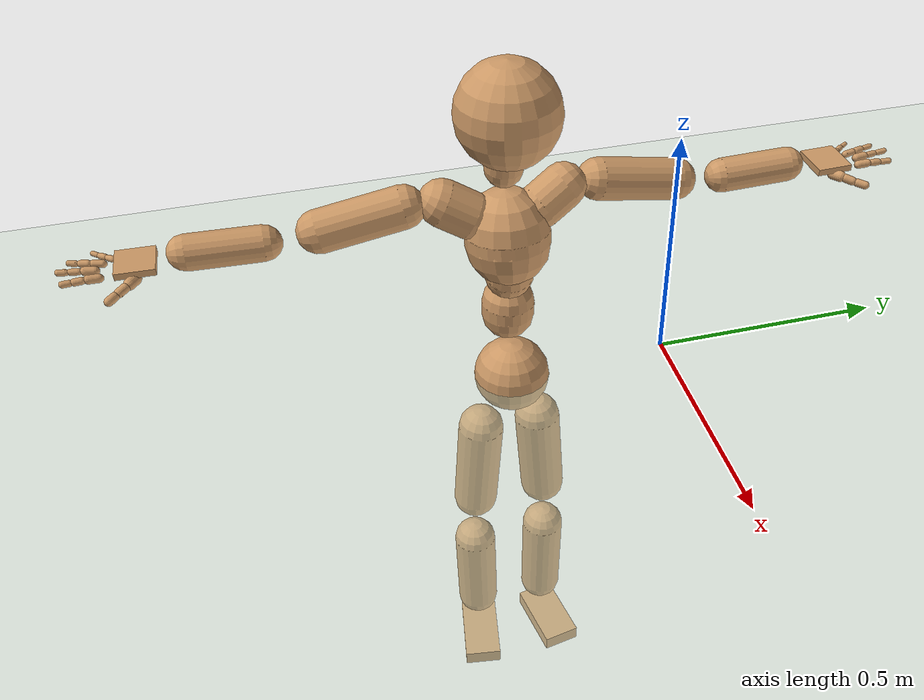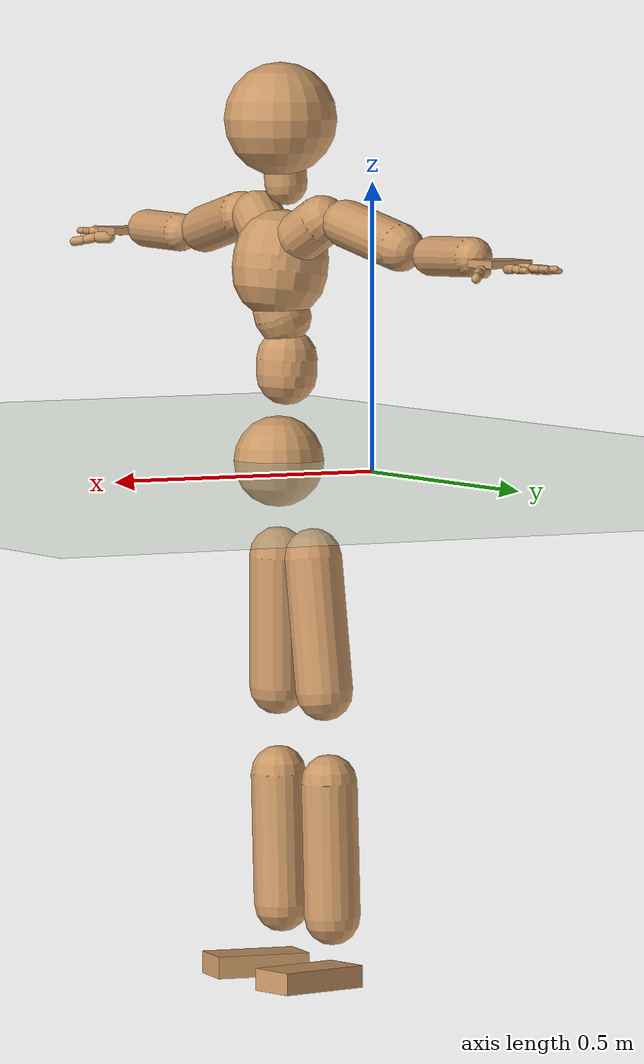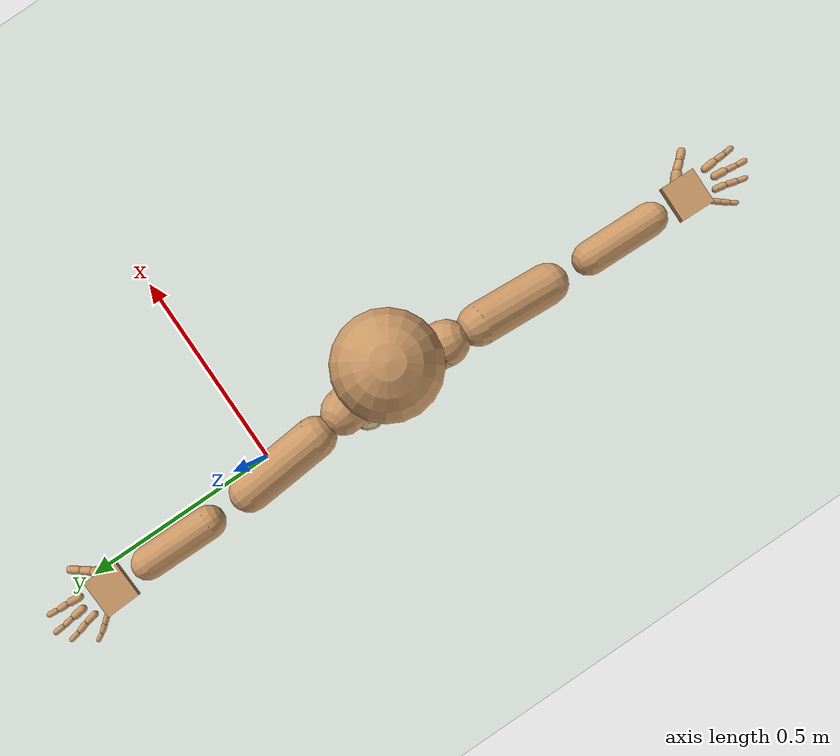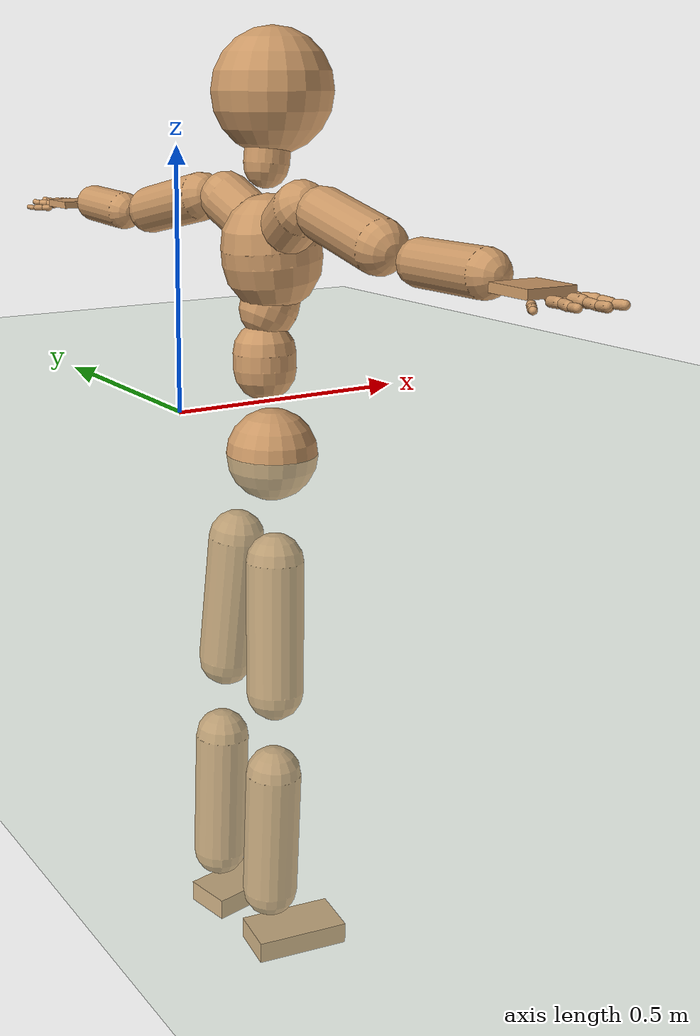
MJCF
<mujoco model="humanoid">
  <compiler coordinate="local" angle="radian"/>
  <default>
    <joint damping="0.0" armature="0.01" stiffness="0.0" limited="true"/>
    <geom conaffinity="1" condim="3" contype="7" margin="0.001" rgba="0.8 0.6 .4 1"/>
  </default>
  <asset>
    <texture type="skybox" builtin="gradient" rgb1=".4 .5 .6" rgb2="0 0 0" width="100" height="100"/>
    <texture builtin="flat" height="1278" mark="cross" markrgb="1 1 1" name="texgeom" random="0.01" rgb1="0.8 0.6 0.4" rgb2="0.8 0.6 0.4" type="cube" width="127"/>
    <texture builtin="checker" height="100" name="texplane" rgb1="0 0 0" rgb2="0.8 0.8 0.8" type="2d" width="100"/>
    <material name="MatPlane" reflectance="0.5" shininess="1" specular="1" texrepeat="60 60" texture="texplane"/>
    <material name="geom" texture="texgeom" texuniform="true"/>
  </asset>
  <worldbody>
    <light cutoff="100" diffuse="1 1 1" dir="-0 0 -1.3" directional="true" exponent="1" pos="0 0 1.3" specular=".1 .1 .1"/>
    <geom conaffinity="1" condim="3" name="floor" pos="0 0 0" rgba="0.8 0.9 0.8 1" size="100 100 .2" type="plane" material="MatPlane"/>
    <body name="Pelvis" pos="0.0004 -0.3378 -0.0043">
      <freejoint name="Pelvis"/>
      <geom type="sphere" contype="1" conaffinity="1" density="500" size="0.0804" pos="0.0000 0.0000 0.0000" name="Pelvis"/>
      <body name="L_Hip" pos="-0.0288 0.0597 -0.0864">
        <joint name="L_Hip_x" type="hinge" pos="0 0 0" axis="1 0 0" stiffness="800" damping="80" armature="0.02" range="-180.0000 180.0000"/>
        <joint name="L_Hip_y" type="hinge" pos="0 0 0" axis="0 1 0" stiffness="800" damping="80" armature="0.02" range="-180.0000 180.0000"/>
        <joint name="L_Hip_z" type="hinge" pos="0 0 0" axis="0 0 1" stiffness="800" damping="80" armature="0.02" range="-180.0000 180.0000"/>
        <geom type="capsule" contype="1" conaffinity="1" density="500" fromto="-0.0043 0.0056 -0.0795 -0.0174 0.0225 -0.3181" size="0.0506" name="L_Hip"/>
        <body name="L_Knee" pos="-0.0217 0.0281 -0.3977">
          <joint name="L_Knee_x" type="hinge" pos="0 0 0" axis="1 0 0" stiffness="800" damping="80" armature="0.02" range="-180.0000 180.0000"/>
          <joint name="L_Knee_y" type="hinge" pos="0 0 0" axis="0 1 0" stiffness="800" damping="80" armature="0.02" range="-180.0000 180.0000"/>
          <joint name="L_Knee_z" type="hinge" pos="0 0 0" axis="0 0 1" stiffness="800" damping="80" armature="0.02" range="-180.0000 180.0000"/>
          <geom type="capsule" contype="1" conaffinity="1" density="500" fromto="-0.0029 -0.0011 -0.0800 -0.0114 -0.0045 -0.3201" size="0.0496" name="L_Knee"/>
          <body name="L_Ankle" pos="-0.0143 -0.0056 -0.4001">
            <joint name="L_Ankle_x" type="hinge" pos="0 0 0" axis="1 0 0" stiffness="800" damping="80" armature="0.02" range="-180.0000 180.0000"/>
            <joint name="L_Ankle_y" type="hinge" pos="0 0 0" axis="0 1 0" stiffness="800" damping="80" armature="0.02" range="-180.0000 180.0000"/>
            <joint name="L_Ankle_z" type="hinge" pos="0 0 0" axis="0 0 1" stiffness="800" damping="80" armature="0.02" range="-180.0000 180.0000"/>
            <geom type="box" contype="1" conaffinity="1" density="500" pos="0.0540 0.0097 -0.0237" size="0.0855 0.0446 0.0196" quat="0.9961 0.0000 0.0000 0.0884" name="L_Ankle"/>
            <body name="L_Toe" pos="0.1081 0.0193 -0.0474">
              <joint name="L_Toe_x" type="hinge" pos="0 0 0" axis="1 0 0" stiffness="500" damping="50" armature="0.02" range="-180.0000 180.0000"/>
              <joint name="L_Toe_y" type="hinge" pos="0 0 0" axis="0 1 0" stiffness="500" damping="50" armature="0.02" range="-180.0000 180.0000"/>
              <joint name="L_Toe_z" type="hinge" pos="0 0 0" axis="0 0 1" stiffness="500" damping="50" armature="0.02" range="-180.0000 180.0000"/>
              <geom type="box" contype="1" conaffinity="1" density="500" pos="0.0000 0.0000 0.0239" size="0.0009 0.0022 0.001" quat="0.9954 0.0000 0.0000 0.0955" name="L_Toe"/>
            </body>
          </body>
        </body>
      </body>
      <body name="R_Hip" pos="-0.0303 -0.0593 -0.0937">
        <joint name="R_Hip_x" type="hinge" pos="0 0 0" axis="1 0 0" stiffness="800" damping="80" armature="0.02" range="-180.0000 180.0000"/>
        <joint name="R_Hip_y" type="hinge" pos="0 0 0" axis="0 1 0" stiffness="800" damping="80" armature="0.02" range="-180.0000 180.0000"/>
        <joint name="R_Hip_z" type="hinge" pos="0 0 0" axis="0 0 1" stiffness="800" damping="80" armature="0.02" range="-180.0000 180.0000"/>
        <geom type="capsule" contype="1" conaffinity="1" density="500" fromto="-0.0032 -0.0062 -0.0785 -0.0130 -0.0249 -0.3142" size="0.0505" name="R_Hip"/>
        <body name="R_Knee" pos="-0.0162 -0.0311 -0.3927">
          <joint name="R_Knee_x" type="hinge" pos="0 0 0" axis="1 0 0" stiffness="800" damping="80" armature="0.02" range="-180.0000 180.0000"/>
          <joint name="R_Knee_y" type="hinge" pos="0 0 0" axis="0 1 0" stiffness="800" damping="80" armature="0.02" range="-180.0000 180.0000"/>
          <joint name="R_Knee_z" type="hinge" pos="0 0 0" axis="0 0 1" stiffness="800" damping="80" armature="0.02" range="-180.0000 180.0000"/>
          <geom type="capsule" contype="1" conaffinity="1" density="500" fromto="-0.0020 0.0003 -0.0783 -0.0078 0.0011 -0.3134" size="0.0496" name="R_Knee"/>
          <body name="R_Ankle" pos="-0.0098 0.0014 -0.3917">
            <joint name="R_Ankle_x" type="hinge" pos="0 0 0" axis="1 0 0" stiffness="800" damping="80" armature="0.02" range="-180.0000 180.0000"/>
            <joint name="R_Ankle_y" type="hinge" pos="0 0 0" axis="0 1 0" stiffness="800" damping="80" armature="0.02" range="-180.0000 180.0000"/>
            <joint name="R_Ankle_z" type="hinge" pos="0 0 0" axis="0 0 1" stiffness="800" damping="80" armature="0.02" range="-180.0000 180.0000"/>
            <geom type="box" contype="1" conaffinity="1" density="500" pos="0.0507 -0.0077 -0.0256" size="0.0855 0.0446 0.0196" quat="0.9972 0.0000 0.0000 -0.0753" name="R_Ankle"/>
            <body name="R_Toe" pos="0.1013 -0.0154 -0.0512">
              <joint name="R_Toe_x" type="hinge" pos="0 0 0" axis="1 0 0" stiffness="500" damping="50" armature="0.02" range="-180.0000 180.0000"/>
              <joint name="R_Toe_y" type="hinge" pos="0 0 0" axis="0 1 0" stiffness="500" damping="50" armature="0.02" range="-180.0000 180.0000"/>
              <joint name="R_Toe_z" type="hinge" pos="0 0 0" axis="0 0 1" stiffness="500" damping="50" armature="0.02" range="-180.0000 180.0000"/>
              <geom type="box" contype="1" conaffinity="1" density="500" pos="0.0000 0.0000 0.0258" size="0.0009 0.0022 0.001" quat="0.9979 0.0000 0.0000 -0.0644" name="R_Toe"/>
            </body>
          </body>
        </body>
      </body>
      <body name="Torso" pos="-0.0161 -0.0042 0.0979">
        <joint name="Torso_x" type="hinge" pos="0 0 0" axis="1 0 0" stiffness="1000" damping="100" armature="0.02" range="-180.0000 180.0000"/>
        <joint name="Torso_y" type="hinge" pos="0 0 0" axis="0 1 0" stiffness="1000" damping="100" armature="0.02" range="-180.0000 180.0000"/>
        <joint name="Torso_z" type="hinge" pos="0 0 0" axis="0 0 1" stiffness="1000" damping="100" armature="0.02" range="-180.0000 180.0000"/>
        <geom type="capsule" contype="1" conaffinity="1" density="500" fromto="-0.0009 0.0030 0.0822 -0.0006 0.0020 0.0548" size="0.0541" name="Torso"/>
        <body name="Spine" pos="-0.0016 0.0051 0.137">
          <joint name="Spine_x" type="hinge" pos="0 0 0" axis="1 0 0" stiffness="1000" damping="100" armature="0.02" range="-180.0000 180.0000"/>
          <joint name="Spine_y" type="hinge" pos="0 0 0" axis="0 1 0" stiffness="1000" damping="100" armature="0.02" range="-180.0000 180.0000"/>
          <joint name="Spine_z" type="hinge" pos="0 0 0" axis="0 0 1" stiffness="1000" damping="100" armature="0.02" range="-180.0000 180.0000"/>
          <geom type="capsule" contype="1" conaffinity="1" density="500" fromto="0.0131 -0.0013 0.0285 0.0087 -0.0009 0.0190" size="0.0499" name="Spine"/>
          <body name="Chest" pos="0.0218 -0.0021 0.0474">
            <joint name="Chest_x" type="hinge" pos="0 0 0" axis="1 0 0" stiffness="1000" damping="100" armature="0.02" range="-180.0000 180.0000"/>
            <joint name="Chest_y" type="hinge" pos="0 0 0" axis="0 1 0" stiffness="1000" damping="100" armature="0.02" range="-180.0000 180.0000"/>
            <joint name="Chest_z" type="hinge" pos="0 0 0" axis="0 0 1" stiffness="1000" damping="100" armature="0.02" range="-180.0000 180.0000"/>
            <geom type="capsule" contype="1" conaffinity="1" density="500" fromto="-0.0100 -0.0013 0.0774 -0.0067 -0.0009 0.0516" size="0.0847" name="Chest"/>
            <body name="Neck" pos="-0.0248 -0.005 0.1777">
              <joint name="Neck_x" type="hinge" pos="0 0 0" axis="1 0 0" stiffness="500" damping="50" armature="0.02" range="-180.0000 180.0000"/>
              <joint name="Neck_y" type="hinge" pos="0 0 0" axis="0 1 0" stiffness="500" damping="50" armature="0.02" range="-180.0000 180.0000"/>
              <joint name="Neck_z" type="hinge" pos="0 0 0" axis="0 0 1" stiffness="500" damping="50" armature="0.02" range="-180.0000 180.0000"/>
              <geom type="capsule" contype="1" conaffinity="1" density="500" fromto="0.0037 0.0017 0.0285 0.0147 0.0067 0.1140" size="0.0379" name="Neck"/>
              <body name="Head" pos="0.0184 0.0084 0.1425">
                <joint name="Head_x" type="hinge" pos="0 0 0" axis="1 0 0" stiffness="500" damping="50" armature="0.02" range="-180.0000 180.0000"/>
                <joint name="Head_y" type="hinge" pos="0 0 0" axis="0 1 0" stiffness="500" damping="50" armature="0.02" range="-180.0000 180.0000"/>
                <joint name="Head_z" type="hinge" pos="0 0 0" axis="0 0 1" stiffness="500" damping="50" armature="0.02" range="-180.0000 180.0000"/>
                <geom type="sphere" contype="1" conaffinity="1" density="500" size="0.1004" pos="0.0000 0.0000 0.0000" name="Head"/>
              </body>
            </body>
            <body name="L_Thorax" pos="-0.0101 0.0477 0.1065">
              <joint name="L_Thorax_x" type="hinge" pos="0 0 0" axis="1 0 0" stiffness="500" damping="50" armature="0.02" range="-180.0000 180.0000"/>
              <joint name="L_Thorax_y" type="hinge" pos="0 0 0" axis="0 1 0" stiffness="500" damping="50" armature="0.02" range="-180.0000 180.0000"/>
              <joint name="L_Thorax_z" type="hinge" pos="0 0 0" axis="0 0 1" stiffness="500" damping="50" armature="0.02" range="-180.0000 180.0000"/>
              <geom type="capsule" contype="1" conaffinity="1" density="500" fromto="-0.0044 0.0167 0.0097 -0.0175 0.0668 0.0387" size="0.0454" name="L_Thorax"/>
              <body name="L_Shoulder" pos="-0.0218 0.0834 0.0484">
                <joint name="L_Shoulder_x" type="hinge" pos="0 0 0" axis="1 0 0" stiffness="500" damping="50" armature="0.02" range="-180.0000 180.0000"/>
                <joint name="L_Shoulder_y" type="hinge" pos="0 0 0" axis="0 1 0" stiffness="500" damping="50" armature="0.02" range="-180.0000 180.0000"/>
                <joint name="L_Shoulder_z" type="hinge" pos="0 0 0" axis="0 0 1" stiffness="500" damping="50" armature="0.02" range="-180.0000 180.0000"/>
                <geom type="capsule" contype="1" conaffinity="1" density="500" fromto="-0.0048 0.0556 -0.0116 -0.0192 0.2222 -0.0466" size="0.0418" name="L_Shoulder"/>
                <body name="L_Elbow" pos="-0.024 0.2778 -0.0582">
                  <joint name="L_Elbow_x" type="hinge" pos="0 0 0" axis="1 0 0" stiffness="500" damping="50" armature="0.02" range="-720.0000 720.0000"/>
                  <joint name="L_Elbow_y" type="hinge" pos="0 0 0" axis="0 1 0" stiffness="500" damping="50" armature="0.02" range="-720.0000 720.0000"/>
                  <joint name="L_Elbow_z" type="hinge" pos="0 0 0" axis="0 0 1" stiffness="500" damping="50" armature="0.02" range="-720.0000 720.0000"/>
                  <geom type="capsule" contype="1" conaffinity="1" density="500" fromto="0.0003 0.0469 0.0014 0.0014 0.1875 0.0058" size="0.0342" name="L_Elbow"/>
                  <body name="L_Wrist" pos="0.0017 0.2344 0.0072">
                    <joint name="L_Wrist_x" type="hinge" pos="0 0 0" axis="1 0 0" stiffness="300" damping="30" armature="0.02" range="-180.0000 180.0000"/>
                    <joint name="L_Wrist_y" type="hinge" pos="0 0 0" axis="0 1 0" stiffness="300" damping="30" armature="0.02" range="-180.0000 180.0000"/>
                    <joint name="L_Wrist_z" type="hinge" pos="0 0 0" axis="0 0 1" stiffness="300" damping="30" armature="0.02" range="-180.0000 180.0000"/>
                    <geom type="box" contype="1" conaffinity="1" density="500" pos="-0.0018 0.0434 -0.0084" size="0.037 0.0411 0.0066" quat="0.7218 0.0000 0.0000 -0.6921" name="L_Wrist"/>
                    <body name="L_Index1" pos="0.02 0.1018 -0.0152">
                      <joint name="L_Index1_x" type="hinge" pos="0 0 0" axis="1 0 0" stiffness="100" damping="10" armature="0.02" range="-180.0000 180.0000"/>
                      <joint name="L_Index1_y" type="hinge" pos="0 0 0" axis="0 1 0" stiffness="100" damping="10" armature="0.02" range="-180.0000 180.0000"/>
                      <joint name="L_Index1_z" type="hinge" pos="0 0 0" axis="0 0 1" stiffness="100" damping="10" armature="0.02" range="-180.0000 180.0000"/>
                      <geom type="capsule" contype="1" conaffinity="1" density="500" fromto="0.0006 0.0062 0.0005 0.0022 0.0249 0.0020" size="0.0083" name="L_Index1"/>
                      <body name="L_Index2" pos="0.0028 0.0312 0.0024">
                        <joint name="L_Index2_x" type="hinge" pos="0 0 0" axis="1 0 0" stiffness="100" damping="10" armature="0.02" range="-180.0000 180.0000"/>
                        <joint name="L_Index2_y" type="hinge" pos="0 0 0" axis="0 1 0" stiffness="100" damping="10" armature="0.02" range="-180.0000 180.0000"/>
                        <joint name="L_Index2_z" type="hinge" pos="0 0 0" axis="0 0 1" stiffness="100" damping="10" armature="0.02" range="-180.0000 180.0000"/>
                        <geom type="capsule" contype="1" conaffinity="1" density="500" fromto="0.0001 0.0044 -0.0003 0.0004 0.0177 -0.0011" size="0.007" name="L_Index2"/>
                        <body name="L_Index3" pos="0.0005 0.0221 -0.0014">
                          <joint name="L_Index3_x" type="hinge" pos="0 0 0" axis="1 0 0" stiffness="100" damping="10" armature="0.02" range="-180.0000 180.0000"/>
                          <joint name="L_Index3_y" type="hinge" pos="0 0 0" axis="0 1 0" stiffness="100" damping="10" armature="0.02" range="-180.0000 180.0000"/>
                          <joint name="L_Index3_z" type="hinge" pos="0 0 0" axis="0 0 1" stiffness="100" damping="10" armature="0.02" range="-180.0000 180.0000"/>
                          <geom type="capsule" contype="1" conaffinity="1" density="500" fromto="0.0005 0.0048 0.0001 0.0020 0.0193 0.0005" size="0.006" name="L_Index3"/>
                        </body>
                      </body>
                    </body>
                    <body name="L_Middle1" pos="-0.0015 0.1088 -0.0131">
                      <joint name="L_Middle1_x" type="hinge" pos="0 0 0" axis="1 0 0" stiffness="100" damping="10" armature="0.02" range="-180.0000 180.0000"/>
                      <joint name="L_Middle1_y" type="hinge" pos="0 0 0" axis="0 1 0" stiffness="100" damping="10" armature="0.02" range="-180.0000 180.0000"/>
                      <joint name="L_Middle1_z" type="hinge" pos="0 0 0" axis="0 0 1" stiffness="100" damping="10" armature="0.02" range="-180.0000 180.0000"/>
                      <geom type="capsule" contype="1" conaffinity="1" density="500" fromto="-0.0008 0.0060 0.0002 -0.0030 0.0238 0.0009" size="0.0085" name="L_Middle1"/>
                      <body name="L_Middle2" pos="-0.0038 0.0298 0.0011">
                        <joint name="L_Middle2_x" type="hinge" pos="0 0 0" axis="1 0 0" stiffness="100" damping="10" armature="0.02" range="-180.0000 180.0000"/>
                        <joint name="L_Middle2_y" type="hinge" pos="0 0 0" axis="0 1 0" stiffness="100" damping="10" armature="0.02" range="-180.0000 180.0000"/>
                        <joint name="L_Middle2_z" type="hinge" pos="0 0 0" axis="0 0 1" stiffness="100" damping="10" armature="0.02" range="-180.0000 180.0000"/>
                        <geom type="capsule" contype="1" conaffinity="1" density="500" fromto="-0.0007 0.0046 -0.0001 -0.0030 0.0186 -0.0004" size="0.0064" name="L_Middle2"/>
                        <body name="L_Middle3" pos="-0.0037 0.0232 -0.0005">
                          <joint name="L_Middle3_x" type="hinge" pos="0 0 0" axis="1 0 0" stiffness="100" damping="10" armature="0.02" range="-180.0000 180.0000"/>
                          <joint name="L_Middle3_y" type="hinge" pos="0 0 0" axis="0 1 0" stiffness="100" damping="10" armature="0.02" range="-180.0000 180.0000"/>
                          <joint name="L_Middle3_z" type="hinge" pos="0 0 0" axis="0 0 1" stiffness="100" damping="10" armature="0.02" range="-180.0000 180.0000"/>
                          <geom type="capsule" contype="1" conaffinity="1" density="500" fromto="-0.0003 0.0050 0.0003 -0.0014 0.0202 0.0012" size="0.0059" name="L_Middle3"/>
                        </body>
                      </body>
                    </body>
                    <body name="L_Pinky1" pos="-0.0389 0.0834 -0.0194">
                      <joint name="L_Pinky1_x" type="hinge" pos="0 0 0" axis="1 0 0" stiffness="100" damping="10" armature="0.02" range="-180.0000 180.0000"/>
                      <joint name="L_Pinky1_y" type="hinge" pos="0 0 0" axis="0 1 0" stiffness="100" damping="10" armature="0.02" range="-180.0000 180.0000"/>
                      <joint name="L_Pinky1_z" type="hinge" pos="0 0 0" axis="0 0 1" stiffness="100" damping="10" armature="0.02" range="-180.0000 180.0000"/>
                      <geom type="capsule" contype="1" conaffinity="1" density="500" fromto="-0.0024 0.0028 -0.0001 -0.0095 0.0113 -0.0002" size="0.0061" name="L_Pinky1"/>
                      <body name="L_Pinky2" pos="-0.0119 0.0141 -0.0003">
                        <joint name="L_Pinky2_x" type="hinge" pos="0 0 0" axis="1 0 0" stiffness="100" damping="10" armature="0.02" range="-180.0000 180.0000"/>
                        <joint name="L_Pinky2_y" type="hinge" pos="0 0 0" axis="0 1 0" stiffness="100" damping="10" armature="0.02" range="-180.0000 180.0000"/>
                        <joint name="L_Pinky2_z" type="hinge" pos="0 0 0" axis="0 0 1" stiffness="100" damping="10" armature="0.02" range="-180.0000 180.0000"/>
                        <geom type="capsule" contype="1" conaffinity="1" density="500" fromto="-0.0023 0.0029 -0.0001 -0.0093 0.0116 -0.0005" size="0.006" name="L_Pinky2"/>
                        <body name="L_Pinky3" pos="-0.0116 0.0145 -0.0007">
                          <joint name="L_Pinky3_x" type="hinge" pos="0 0 0" axis="1 0 0" stiffness="100" damping="10" armature="0.02" range="-180.0000 180.0000"/>
                          <joint name="L_Pinky3_y" type="hinge" pos="0 0 0" axis="0 1 0" stiffness="100" damping="10" armature="0.02" range="-180.0000 180.0000"/>
                          <joint name="L_Pinky3_z" type="hinge" pos="0 0 0" axis="0 0 1" stiffness="100" damping="10" armature="0.02" range="-180.0000 180.0000"/>
                          <geom type="capsule" contype="1" conaffinity="1" density="500" fromto="-0.0019 0.0033 0.0003 -0.0077 0.0132 0.0011" size="0.0047" name="L_Pinky3"/>
                        </body>
                      </body>
                    </body>
                    <body name="L_Ring1" pos="-0.0233 0.0966 -0.0151">
                      <joint name="L_Ring1_x" type="hinge" pos="0 0 0" axis="1 0 0" stiffness="100" damping="10" armature="0.02" range="-180.0000 180.0000"/>
                      <joint name="L_Ring1_y" type="hinge" pos="0 0 0" axis="0 1 0" stiffness="100" damping="10" armature="0.02" range="-180.0000 180.0000"/>
                      <joint name="L_Ring1_z" type="hinge" pos="0 0 0" axis="0 0 1" stiffness="100" damping="10" armature="0.02" range="-180.0000 180.0000"/>
                      <geom type="capsule" contype="1" conaffinity="1" density="500" fromto="-0.0010 0.0054 0.0003 -0.0042 0.0215 0.0012" size="0.0073" name="L_Ring1"/>
                      <body name="L_Ring2" pos="-0.0052 0.0269 0.0015">
                        <joint name="L_Ring2_x" type="hinge" pos="0 0 0" axis="1 0 0" stiffness="100" damping="10" armature="0.02" range="-180.0000 180.0000"/>
                        <joint name="L_Ring2_y" type="hinge" pos="0 0 0" axis="0 1 0" stiffness="100" damping="10" armature="0.02" range="-180.0000 180.0000"/>
                        <joint name="L_Ring2_z" type="hinge" pos="0 0 0" axis="0 0 1" stiffness="100" damping="10" armature="0.02" range="-180.0000 180.0000"/>
                        <geom type="capsule" contype="1" conaffinity="1" density="500" fromto="-0.0014 0.0044 -0.0002 -0.0056 0.0177 -0.0006" size="0.0069" name="L_Ring2"/>
                        <body name="L_Ring3" pos="-0.007 0.0221 -0.0008">
                          <joint name="L_Ring3_x" type="hinge" pos="0 0 0" axis="1 0 0" stiffness="100" damping="10" armature="0.02" range="-180.0000 180.0000"/>
                          <joint name="L_Ring3_y" type="hinge" pos="0 0 0" axis="0 1 0" stiffness="100" damping="10" armature="0.02" range="-180.0000 180.0000"/>
                          <joint name="L_Ring3_z" type="hinge" pos="0 0 0" axis="0 0 1" stiffness="100" damping="10" armature="0.02" range="-180.0000 180.0000"/>
                          <geom type="capsule" contype="1" conaffinity="1" density="500" fromto="-0.0010 0.0048 0.0002 -0.0040 0.0193 0.0010" size="0.0055" name="L_Ring3"/>
                        </body>
                      </body>
                    </body>
                    <body name="L_Thumb1" pos="0.0255 0.0433 -0.0212">
                      <joint name="L_Thumb1_x" type="hinge" pos="0 0 0" axis="1 0 0" stiffness="100" damping="10" armature="0.02" range="-180.0000 180.0000"/>
                      <joint name="L_Thumb1_y" type="hinge" pos="0 0 0" axis="0 1 0" stiffness="100" damping="10" armature="0.02" range="-180.0000 180.0000"/>
                      <joint name="L_Thumb1_z" type="hinge" pos="0 0 0" axis="0 0 1" stiffness="100" damping="10" armature="0.02" range="-180.0000 180.0000"/>
                      <geom type="capsule" contype="1" conaffinity="1" density="500" fromto="0.0046 0.0034 0.0000 0.0185 0.0137 0.0001" size="0.0111" name="L_Thumb1"/>
                      <body name="L_Thumb2" pos="0.0232 0.0171 0.0002">
                        <joint name="L_Thumb2_x" type="hinge" pos="0 0 0" axis="1 0 0" stiffness="100" damping="10" armature="0.02" range="-180.0000 180.0000"/>
                        <joint name="L_Thumb2_y" type="hinge" pos="0 0 0" axis="0 1 0" stiffness="100" damping="10" armature="0.02" range="-180.0000 180.0000"/>
                        <joint name="L_Thumb2_z" type="hinge" pos="0 0 0" axis="0 0 1" stiffness="100" damping="10" armature="0.02" range="-180.0000 180.0000"/>
                        <geom type="capsule" contype="1" conaffinity="1" density="500" fromto="0.0029 0.0040 -0.0011 0.0114 0.0160 -0.0046" size="0.0087" name="L_Thumb2"/>
                        <body name="L_Thumb3" pos="0.0143 0.02 -0.0057">
                          <joint name="L_Thumb3_x" type="hinge" pos="0 0 0" axis="1 0 0" stiffness="100" damping="10" armature="0.02" range="-180.0000 180.0000"/>
                          <joint name="L_Thumb3_y" type="hinge" pos="0 0 0" axis="0 1 0" stiffness="100" damping="10" armature="0.02" range="-180.0000 180.0000"/>
                          <joint name="L_Thumb3_z" type="hinge" pos="0 0 0" axis="0 0 1" stiffness="100" damping="10" armature="0.02" range="-180.0000 180.0000"/>
                          <geom type="capsule" contype="1" conaffinity="1" density="500" fromto="0.0033 0.0044 -0.0007 0.0130 0.0176 -0.0030" size="0.0082" name="L_Thumb3"/>
                        </body>
                      </body>
                    </body>
                  </body>
                </body>
              </body>
            </body>
            <body name="R_Thorax" pos="-0.0152 -0.0494 0.1029">
              <joint name="R_Thorax_x" type="hinge" pos="0 0 0" axis="1 0 0" stiffness="500" damping="50" armature="0.02" range="-180.0000 180.0000"/>
              <joint name="R_Thorax_y" type="hinge" pos="0 0 0" axis="0 1 0" stiffness="500" damping="50" armature="0.02" range="-180.0000 180.0000"/>
              <joint name="R_Thorax_z" type="hinge" pos="0 0 0" axis="0 0 1" stiffness="500" damping="50" armature="0.02" range="-180.0000 180.0000"/>
              <geom type="capsule" contype="1" conaffinity="1" density="500" fromto="-0.0034 -0.0180 0.0104 -0.0136 -0.0718 0.0417" size="0.0463" name="R_Thorax"/>
              <body name="R_Shoulder" pos="-0.0169 -0.0898 0.0521">
                <joint name="R_Shoulder_x" type="hinge" pos="0 0 0" axis="1 0 0" stiffness="500" damping="50" armature="0.02" range="-180.0000 180.0000"/>
                <joint name="R_Shoulder_y" type="hinge" pos="0 0 0" axis="0 1 0" stiffness="500" damping="50" armature="0.02" range="-180.0000 180.0000"/>
                <joint name="R_Shoulder_z" type="hinge" pos="0 0 0" axis="0 0 1" stiffness="500" damping="50" armature="0.02" range="-180.0000 180.0000"/>
                <geom type="capsule" contype="1" conaffinity="1" density="500" fromto="-0.0033 -0.0536 -0.0109 -0.0133 -0.2143 -0.0436" size="0.0421" name="R_Shoulder"/>
                <body name="R_Elbow" pos="-0.0167 -0.2679 -0.0544">
                  <joint name="R_Elbow_x" type="hinge" pos="0 0 0" axis="1 0 0" stiffness="500" damping="50" armature="0.02" range="-720.0000 720.0000"/>
                  <joint name="R_Elbow_y" type="hinge" pos="0 0 0" axis="0 1 0" stiffness="500" damping="50" armature="0.02" range="-720.0000 720.0000"/>
                  <joint name="R_Elbow_z" type="hinge" pos="0 0 0" axis="0 0 1" stiffness="500" damping="50" armature="0.02" range="-720.0000 720.0000"/>
                  <geom type="capsule" contype="1" conaffinity="1" density="500" fromto="-0.0013 -0.0471 0.0005 -0.0052 -0.1885 0.0022" size="0.0344" name="R_Elbow"/>
                  <body name="R_Wrist" pos="-0.0065 -0.2357 0.0027">
                    <joint name="R_Wrist_x" type="hinge" pos="0 0 0" axis="1 0 0" stiffness="300" damping="30" armature="0.02" range="-180.0000 180.0000"/>
                    <joint name="R_Wrist_y" type="hinge" pos="0 0 0" axis="0 1 0" stiffness="300" damping="30" armature="0.02" range="-180.0000 180.0000"/>
                    <joint name="R_Wrist_z" type="hinge" pos="0 0 0" axis="0 0 1" stiffness="300" damping="30" armature="0.02" range="-180.0000 180.0000"/>
                    <geom type="box" contype="1" conaffinity="1" density="500" pos="-0.0012 -0.0428 -0.0081" size="0.037 0.0387 0.0067" quat="0.7170 0.0000 0.0000 0.6971" name="R_Wrist"/>
                    <body name="R_Index1" pos="0.0212 -0.1006 -0.0146">
                      <joint name="R_Index1_x" type="hinge" pos="0 0 0" axis="1 0 0" stiffness="100" damping="10" armature="0.02" range="-180.0000 180.0000"/>
                      <joint name="R_Index1_y" type="hinge" pos="0 0 0" axis="0 1 0" stiffness="100" damping="10" armature="0.02" range="-180.0000 180.0000"/>
                      <joint name="R_Index1_z" type="hinge" pos="0 0 0" axis="0 0 1" stiffness="100" damping="10" armature="0.02" range="-180.0000 180.0000"/>
                      <geom type="capsule" contype="1" conaffinity="1" density="500" fromto="0.0006 -0.0062 0.0005 0.0022 -0.0249 0.0020" size="0.0083" name="R_Index1"/>
                      <body name="R_Index2" pos="0.0028 -0.0312 0.0024">
                        <joint name="R_Index2_x" type="hinge" pos="0 0 0" axis="1 0 0" stiffness="100" damping="10" armature="0.02" range="-180.0000 180.0000"/>
                        <joint name="R_Index2_y" type="hinge" pos="0 0 0" axis="0 1 0" stiffness="100" damping="10" armature="0.02" range="-180.0000 180.0000"/>
                        <joint name="R_Index2_z" type="hinge" pos="0 0 0" axis="0 0 1" stiffness="100" damping="10" armature="0.02" range="-180.0000 180.0000"/>
                        <geom type="capsule" contype="1" conaffinity="1" density="500" fromto="0.0001 -0.0044 -0.0003 0.0004 -0.0177 -0.0011" size="0.007" name="R_Index2"/>
                        <body name="R_Index3" pos="0.0005 -0.0221 -0.0014">
                          <joint name="R_Index3_x" type="hinge" pos="0 0 0" axis="1 0 0" stiffness="100" damping="10" armature="0.02" range="-180.0000 180.0000"/>
                          <joint name="R_Index3_y" type="hinge" pos="0 0 0" axis="0 1 0" stiffness="100" damping="10" armature="0.02" range="-180.0000 180.0000"/>
                          <joint name="R_Index3_z" type="hinge" pos="0 0 0" axis="0 0 1" stiffness="100" damping="10" armature="0.02" range="-180.0000 180.0000"/>
                          <geom type="capsule" contype="1" conaffinity="1" density="500" fromto="0.0005 -0.0040 0.0001 0.0020 -0.0161 0.0005" size="0.0063" name="R_Index3"/>
                        </body>
                      </body>
                    </body>
                    <body name="R_Middle1" pos="-0.0003 -0.1076 -0.0125">
                      <joint name="R_Middle1_x" type="hinge" pos="0 0 0" axis="1 0 0" stiffness="100" damping="10" armature="0.02" range="-180.0000 180.0000"/>
                      <joint name="R_Middle1_y" type="hinge" pos="0 0 0" axis="0 1 0" stiffness="100" damping="10" armature="0.02" range="-180.0000 180.0000"/>
                      <joint name="R_Middle1_z" type="hinge" pos="0 0 0" axis="0 0 1" stiffness="100" damping="10" armature="0.02" range="-180.0000 180.0000"/>
                      <geom type="capsule" contype="1" conaffinity="1" density="500" fromto="-0.0008 -0.0060 0.0002 -0.0030 -0.0238 0.0009" size="0.0085" name="R_Middle1"/>
                      <body name="R_Middle2" pos="-0.0038 -0.0298 0.0011">
                        <joint name="R_Middle2_x" type="hinge" pos="0 0 0" axis="1 0 0" stiffness="100" damping="10" armature="0.02" range="-180.0000 180.0000"/>
                        <joint name="R_Middle2_y" type="hinge" pos="0 0 0" axis="0 1 0" stiffness="100" damping="10" armature="0.02" range="-180.0000 180.0000"/>
                        <joint name="R_Middle2_z" type="hinge" pos="0 0 0" axis="0 0 1" stiffness="100" damping="10" armature="0.02" range="-180.0000 180.0000"/>
                        <geom type="capsule" contype="1" conaffinity="1" density="500" fromto="-0.0007 -0.0046 -0.0001 -0.0030 -0.0186 -0.0004" size="0.0064" name="R_Middle2"/>
                        <body name="R_Middle3" pos="-0.0037 -0.0232 -0.0005">
                          <joint name="R_Middle3_x" type="hinge" pos="0 0 0" axis="1 0 0" stiffness="100" damping="10" armature="0.02" range="-180.0000 180.0000"/>
                          <joint name="R_Middle3_y" type="hinge" pos="0 0 0" axis="0 1 0" stiffness="100" damping="10" armature="0.02" range="-180.0000 180.0000"/>
                          <joint name="R_Middle3_z" type="hinge" pos="0 0 0" axis="0 0 1" stiffness="100" damping="10" armature="0.02" range="-180.0000 180.0000"/>
                          <geom type="capsule" contype="1" conaffinity="1" density="500" fromto="-0.0003 -0.0042 0.0003 -0.0014 -0.0170 0.0012" size="0.0061" name="R_Middle3"/>
                        </body>
                      </body>
                    </body>
                    <body name="R_Pinky1" pos="-0.0377 -0.0822 -0.0188">
                      <joint name="R_Pinky1_x" type="hinge" pos="0 0 0" axis="1 0 0" stiffness="100" damping="10" armature="0.02" range="-180.0000 180.0000"/>
                      <joint name="R_Pinky1_y" type="hinge" pos="0 0 0" axis="0 1 0" stiffness="100" damping="10" armature="0.02" range="-180.0000 180.0000"/>
                      <joint name="R_Pinky1_z" type="hinge" pos="0 0 0" axis="0 0 1" stiffness="100" damping="10" armature="0.02" range="-180.0000 180.0000"/>
                      <geom type="capsule" contype="1" conaffinity="1" density="500" fromto="-0.0024 -0.0028 -0.0001 -0.0095 -0.0113 -0.0002" size="0.0061" name="R_Pinky1"/>
                      <body name="R_Pinky2" pos="-0.0119 -0.0141 -0.0003">
                        <joint name="R_Pinky2_x" type="hinge" pos="0 0 0" axis="1 0 0" stiffness="100" damping="10" armature="0.02" range="-180.0000 180.0000"/>
                        <joint name="R_Pinky2_y" type="hinge" pos="0 0 0" axis="0 1 0" stiffness="100" damping="10" armature="0.02" range="-180.0000 180.0000"/>
                        <joint name="R_Pinky2_z" type="hinge" pos="0 0 0" axis="0 0 1" stiffness="100" damping="10" armature="0.02" range="-180.0000 180.0000"/>
                        <geom type="capsule" contype="1" conaffinity="1" density="500" fromto="-0.0023 -0.0029 -0.0001 -0.0093 -0.0116 -0.0005" size="0.006" name="R_Pinky2"/>
                        <body name="R_Pinky3" pos="-0.0116 -0.0145 -0.0007">
                          <joint name="R_Pinky3_x" type="hinge" pos="0 0 0" axis="1 0 0" stiffness="100" damping="10" armature="0.02" range="-180.0000 180.0000"/>
                          <joint name="R_Pinky3_y" type="hinge" pos="0 0 0" axis="0 1 0" stiffness="100" damping="10" armature="0.02" range="-180.0000 180.0000"/>
                          <joint name="R_Pinky3_z" type="hinge" pos="0 0 0" axis="0 0 1" stiffness="100" damping="10" armature="0.02" range="-180.0000 180.0000"/>
                          <geom type="capsule" contype="1" conaffinity="1" density="500" fromto="-0.0019 -0.0025 0.0003 -0.0077 -0.0100 0.0011" size="0.005" name="R_Pinky3"/>
                        </body>
                      </body>
                    </body>
                    <body name="R_Ring1" pos="-0.0221 -0.0954 -0.0145">
                      <joint name="R_Ring1_x" type="hinge" pos="0 0 0" axis="1 0 0" stiffness="100" damping="10" armature="0.02" range="-180.0000 180.0000"/>
                      <joint name="R_Ring1_y" type="hinge" pos="0 0 0" axis="0 1 0" stiffness="100" damping="10" armature="0.02" range="-180.0000 180.0000"/>
                      <joint name="R_Ring1_z" type="hinge" pos="0 0 0" axis="0 0 1" stiffness="100" damping="10" armature="0.02" range="-180.0000 180.0000"/>
                      <geom type="capsule" contype="1" conaffinity="1" density="500" fromto="-0.0010 -0.0054 0.0003 -0.0042 -0.0215 0.0012" size="0.0073" name="R_Ring1"/>
                      <body name="R_Ring2" pos="-0.0052 -0.0269 0.0015">
                        <joint name="R_Ring2_x" type="hinge" pos="0 0 0" axis="1 0 0" stiffness="100" damping="10" armature="0.02" range="-180.0000 180.0000"/>
                        <joint name="R_Ring2_y" type="hinge" pos="0 0 0" axis="0 1 0" stiffness="100" damping="10" armature="0.02" range="-180.0000 180.0000"/>
                        <joint name="R_Ring2_z" type="hinge" pos="0 0 0" axis="0 0 1" stiffness="100" damping="10" armature="0.02" range="-180.0000 180.0000"/>
                        <geom type="capsule" contype="1" conaffinity="1" density="500" fromto="-0.0014 -0.0044 -0.0002 -0.0056 -0.0177 -0.0006" size="0.0069" name="R_Ring2"/>
                        <body name="R_Ring3" pos="-0.007 -0.0221 -0.0008">
                          <joint name="R_Ring3_x" type="hinge" pos="0 0 0" axis="1 0 0" stiffness="100" damping="10" armature="0.02" range="-180.0000 180.0000"/>
                          <joint name="R_Ring3_y" type="hinge" pos="0 0 0" axis="0 1 0" stiffness="100" damping="10" armature="0.02" range="-180.0000 180.0000"/>
                          <joint name="R_Ring3_z" type="hinge" pos="0 0 0" axis="0 0 1" stiffness="100" damping="10" armature="0.02" range="-180.0000 180.0000"/>
                          <geom type="capsule" contype="1" conaffinity="1" density="500" fromto="-0.0010 -0.0040 0.0002 -0.0040 -0.0161 0.0010" size="0.0058" name="R_Ring3"/>
                        </body>
                      </body>
                    </body>
                    <body name="R_Thumb1" pos="0.0267 -0.0421 -0.0206">
                      <joint name="R_Thumb1_x" type="hinge" pos="0 0 0" axis="1 0 0" stiffness="100" damping="10" armature="0.02" range="-180.0000 180.0000"/>
                      <joint name="R_Thumb1_y" type="hinge" pos="0 0 0" axis="0 1 0" stiffness="100" damping="10" armature="0.02" range="-180.0000 180.0000"/>
                      <joint name="R_Thumb1_z" type="hinge" pos="0 0 0" axis="0 0 1" stiffness="100" damping="10" armature="0.02" range="-180.0000 180.0000"/>
                      <geom type="capsule" contype="1" conaffinity="1" density="500" fromto="0.0046 -0.0034 0.0000 0.0185 -0.0137 0.0001" size="0.0111" name="R_Thumb1"/>
                      <body name="R_Thumb2" pos="0.0232 -0.0171 0.0002">
                        <joint name="R_Thumb2_x" type="hinge" pos="0 0 0" axis="1 0 0" stiffness="100" damping="10" armature="0.02" range="-180.0000 180.0000"/>
                        <joint name="R_Thumb2_y" type="hinge" pos="0 0 0" axis="0 1 0" stiffness="100" damping="10" armature="0.02" range="-180.0000 180.0000"/>
                        <joint name="R_Thumb2_z" type="hinge" pos="0 0 0" axis="0 0 1" stiffness="100" damping="10" armature="0.02" range="-180.0000 180.0000"/>
                        <geom type="capsule" contype="1" conaffinity="1" density="500" fromto="0.0029 -0.0040 -0.0011 0.0114 -0.0160 -0.0046" size="0.0087" name="R_Thumb2"/>
                        <body name="R_Thumb3" pos="0.0143 -0.02 -0.0057">
                          <joint name="R_Thumb3_x" type="hinge" pos="0 0 0" axis="1 0 0" stiffness="100" damping="10" armature="0.02" range="-180.0000 180.0000"/>
                          <joint name="R_Thumb3_y" type="hinge" pos="0 0 0" axis="0 1 0" stiffness="100" damping="10" armature="0.02" range="-180.0000 180.0000"/>
                          <joint name="R_Thumb3_z" type="hinge" pos="0 0 0" axis="0 0 1" stiffness="100" damping="10" armature="0.02" range="-180.0000 180.0000"/>
                          <geom type="capsule" contype="1" conaffinity="1" density="500" fromto="0.0033 -0.0036 -0.0007 0.0130 -0.0144 -0.0030" size="0.0085" name="R_Thumb3"/>
                        </body>
                      </body>
                    </body>
                  </body>
                </body>
              </body>
            </body>
          </body>
        </body>
      </body>
    </body>
  </worldbody>
  <actuator>
    <motor name="L_Hip_x" joint="L_Hip_x" gear="500"/>
    <motor name="L_Hip_y" joint="L_Hip_y" gear="500"/>
    <motor name="L_Hip_z" joint="L_Hip_z" gear="500"/>
    <motor name="L_Knee_x" joint="L_Knee_x" gear="500"/>
    <motor name="L_Knee_y" joint="L_Knee_y" gear="500"/>
    <motor name="L_Knee_z" joint="L_Knee_z" gear="500"/>
    <motor name="L_Ankle_x" joint="L_Ankle_x" gear="500"/>
    <motor name="L_Ankle_y" joint="L_Ankle_y" gear="500"/>
    <motor name="L_Ankle_z" joint="L_Ankle_z" gear="500"/>
    <motor name="L_Toe_x" joint="L_Toe_x" gear="500"/>
    <motor name="L_Toe_y" joint="L_Toe_y" gear="500"/>
    <motor name="L_Toe_z" joint="L_Toe_z" gear="500"/>
    <motor name="R_Hip_x" joint="R_Hip_x" gear="500"/>
    <motor name="R_Hip_y" joint="R_Hip_y" gear="500"/>
    <motor name="R_Hip_z" joint="R_Hip_z" gear="500"/>
    <motor name="R_Knee_x" joint="R_Knee_x" gear="500"/>
    <motor name="R_Knee_y" joint="R_Knee_y" gear="500"/>
    <motor name="R_Knee_z" joint="R_Knee_z" gear="500"/>
    <motor name="R_Ankle_x" joint="R_Ankle_x" gear="500"/>
    <motor name="R_Ankle_y" joint="R_Ankle_y" gear="500"/>
    <motor name="R_Ankle_z" joint="R_Ankle_z" gear="500"/>
    <motor name="R_Toe_x" joint="R_Toe_x" gear="500"/>
    <motor name="R_Toe_y" joint="R_Toe_y" gear="500"/>
    <motor name="R_Toe_z" joint="R_Toe_z" gear="500"/>
    <motor name="Torso_x" joint="Torso_x" gear="500"/>
    <motor name="Torso_y" joint="Torso_y" gear="500"/>
    <motor name="Torso_z" joint="Torso_z" gear="500"/>
    <motor name="Spine_x" joint="Spine_x" gear="500"/>
    <motor name="Spine_y" joint="Spine_y" gear="500"/>
    <motor name="Spine_z" joint="Spine_z" gear="500"/>
    <motor name="Chest_x" joint="Chest_x" gear="500"/>
    <motor name="Chest_y" joint="Chest_y" gear="500"/>
    <motor name="Chest_z" joint="Chest_z" gear="500"/>
    <motor name="Neck_x" joint="Neck_x" gear="500"/>
    <motor name="Neck_y" joint="Neck_y" gear="500"/>
    <motor name="Neck_z" joint="Neck_z" gear="500"/>
    <motor name="Head_x" joint="Head_x" gear="500"/>
    <motor name="Head_y" joint="Head_y" gear="500"/>
    <motor name="Head_z" joint="Head_z" gear="500"/>
    <motor name="L_Thorax_x" joint="L_Thorax_x" gear="500"/>
    <motor name="L_Thorax_y" joint="L_Thorax_y" gear="500"/>
    <motor name="L_Thorax_z" joint="L_Thorax_z" gear="500"/>
    <motor name="L_Shoulder_x" joint="L_Shoulder_x" gear="500"/>
    <motor name="L_Shoulder_y" joint="L_Shoulder_y" gear="500"/>
    <motor name="L_Shoulder_z" joint="L_Shoulder_z" gear="500"/>
    <motor name="L_Elbow_x" joint="L_Elbow_x" gear="500"/>
    <motor name="L_Elbow_y" joint="L_Elbow_y" gear="500"/>
    <motor name="L_Elbow_z" joint="L_Elbow_z" gear="500"/>
    <motor name="L_Wrist_x" joint="L_Wrist_x" gear="500"/>
    <motor name="L_Wrist_y" joint="L_Wrist_y" gear="500"/>
    <motor name="L_Wrist_z" joint="L_Wrist_z" gear="500"/>
    <motor name="L_Index1_x" joint="L_Index1_x" gear="500"/>
    <motor name="L_Index1_y" joint="L_Index1_y" gear="500"/>
    <motor name="L_Index1_z" joint="L_Index1_z" gear="500"/>
    <motor name="L_Index2_x" joint="L_Index2_x" gear="500"/>
    <motor name="L_Index2_y" joint="L_Index2_y" gear="500"/>
    <motor name="L_Index2_z" joint="L_Index2_z" gear="500"/>
    <motor name="L_Index3_x" joint="L_Index3_x" gear="500"/>
    <motor name="L_Index3_y" joint="L_Index3_y" gear="500"/>
    <motor name="L_Index3_z" joint="L_Index3_z" gear="500"/>
    <motor name="L_Middle1_x" joint="L_Middle1_x" gear="500"/>
    <motor name="L_Middle1_y" joint="L_Middle1_y" gear="500"/>
    <motor name="L_Middle1_z" joint="L_Middle1_z" gear="500"/>
    <motor name="L_Middle2_x" joint="L_Middle2_x" gear="500"/>
    <motor name="L_Middle2_y" joint="L_Middle2_y" gear="500"/>
    <motor name="L_Middle2_z" joint="L_Middle2_z" gear="500"/>
    <motor name="L_Middle3_x" joint="L_Middle3_x" gear="500"/>
    <motor name="L_Middle3_y" joint="L_Middle3_y" gear="500"/>
    <motor name="L_Middle3_z" joint="L_Middle3_z" gear="500"/>
    <motor name="L_Pinky1_x" joint="L_Pinky1_x" gear="500"/>
    <motor name="L_Pinky1_y" joint="L_Pinky1_y" gear="500"/>
    <motor name="L_Pinky1_z" joint="L_Pinky1_z" gear="500"/>
    <motor name="L_Pinky2_x" joint="L_Pinky2_x" gear="500"/>
    <motor name="L_Pinky2_y" joint="L_Pinky2_y" gear="500"/>
    <motor name="L_Pinky2_z" joint="L_Pinky2_z" gear="500"/>
    <motor name="L_Pinky3_x" joint="L_Pinky3_x" gear="500"/>
    <motor name="L_Pinky3_y" joint="L_Pinky3_y" gear="500"/>
    <motor name="L_Pinky3_z" joint="L_Pinky3_z" gear="500"/>
    <motor name="L_Ring1_x" joint="L_Ring1_x" gear="500"/>
    <motor name="L_Ring1_y" joint="L_Ring1_y" gear="500"/>
    <motor name="L_Ring1_z" joint="L_Ring1_z" gear="500"/>
    <motor name="L_Ring2_x" joint="L_Ring2_x" gear="500"/>
    <motor name="L_Ring2_y" joint="L_Ring2_y" gear="500"/>
    <motor name="L_Ring2_z" joint="L_Ring2_z" gear="500"/>
    <motor name="L_Ring3_x" joint="L_Ring3_x" gear="500"/>
    <motor name="L_Ring3_y" joint="L_Ring3_y" gear="500"/>
    <motor name="L_Ring3_z" joint="L_Ring3_z" gear="500"/>
    <motor name="L_Thumb1_x" joint="L_Thumb1_x" gear="500"/>
    <motor name="L_Thumb1_y" joint="L_Thumb1_y" gear="500"/>
    <motor name="L_Thumb1_z" joint="L_Thumb1_z" gear="500"/>
    <motor name="L_Thumb2_x" joint="L_Thumb2_x" gear="500"/>
    <motor name="L_Thumb2_y" joint="L_Thumb2_y" gear="500"/>
    <motor name="L_Thumb2_z" joint="L_Thumb2_z" gear="500"/>
    <motor name="L_Thumb3_x" joint="L_Thumb3_x" gear="500"/>
    <motor name="L_Thumb3_y" joint="L_Thumb3_y" gear="500"/>
    <motor name="L_Thumb3_z" joint="L_Thumb3_z" gear="500"/>
    <motor name="R_Thorax_x" joint="R_Thorax_x" gear="500"/>
    <motor name="R_Thorax_y" joint="R_Thorax_y" gear="500"/>
    <motor name="R_Thorax_z" joint="R_Thorax_z" gear="500"/>
    <motor name="R_Shoulder_x" joint="R_Shoulder_x" gear="500"/>
    <motor name="R_Shoulder_y" joint="R_Shoulder_y" gear="500"/>
    <motor name="R_Shoulder_z" joint="R_Shoulder_z" gear="500"/>
    <motor name="R_Elbow_x" joint="R_Elbow_x" gear="500"/>
    <motor name="R_Elbow_y" joint="R_Elbow_y" gear="500"/>
    <motor name="R_Elbow_z" joint="R_Elbow_z" gear="500"/>
    <motor name="R_Wrist_x" joint="R_Wrist_x" gear="500"/>
    <motor name="R_Wrist_y" joint="R_Wrist_y" gear="500"/>
    <motor name="R_Wrist_z" joint="R_Wrist_z" gear="500"/>
    <motor name="R_Index1_x" joint="R_Index1_x" gear="500"/>
    <motor name="R_Index1_y" joint="R_Index1_y" gear="500"/>
    <motor name="R_Index1_z" joint="R_Index1_z" gear="500"/>
    <motor name="R_Index2_x" joint="R_Index2_x" gear="500"/>
    <motor name="R_Index2_y" joint="R_Index2_y" gear="500"/>
    <motor name="R_Index2_z" joint="R_Index2_z" gear="500"/>
    <motor name="R_Index3_x" joint="R_Index3_x" gear="500"/>
    <motor name="R_Index3_y" joint="R_Index3_y" gear="500"/>
    <motor name="R_Index3_z" joint="R_Index3_z" gear="500"/>
    <motor name="R_Middle1_x" joint="R_Middle1_x" gear="500"/>
    <motor name="R_Middle1_y" joint="R_Middle1_y" gear="500"/>
    <motor name="R_Middle1_z" joint="R_Middle1_z" gear="500"/>
    <motor name="R_Middle2_x" joint="R_Middle2_x" gear="500"/>
    <motor name="R_Middle2_y" joint="R_Middle2_y" gear="500"/>
    <motor name="R_Middle2_z" joint="R_Middle2_z" gear="500"/>
    <motor name="R_Middle3_x" joint="R_Middle3_x" gear="500"/>
    <motor name="R_Middle3_y" joint="R_Middle3_y" gear="500"/>
    <motor name="R_Middle3_z" joint="R_Middle3_z" gear="500"/>
    <motor name="R_Pinky1_x" joint="R_Pinky1_x" gear="500"/>
    <motor name="R_Pinky1_y" joint="R_Pinky1_y" gear="500"/>
    <motor name="R_Pinky1_z" joint="R_Pinky1_z" gear="500"/>
    <motor name="R_Pinky2_x" joint="R_Pinky2_x" gear="500"/>
    <motor name="R_Pinky2_y" joint="R_Pinky2_y" gear="500"/>
    <motor name="R_Pinky2_z" joint="R_Pinky2_z" gear="500"/>
    <motor name="R_Pinky3_x" joint="R_Pinky3_x" gear="500"/>
    <motor name="R_Pinky3_y" joint="R_Pinky3_y" gear="500"/>
    <motor name="R_Pinky3_z" joint="R_Pinky3_z" gear="500"/>
    <motor name="R_Ring1_x" joint="R_Ring1_x" gear="500"/>
    <motor name="R_Ring1_y" joint="R_Ring1_y" gear="500"/>
    <motor name="R_Ring1_z" joint="R_Ring1_z" gear="500"/>
    <motor name="R_Ring2_x" joint="R_Ring2_x" gear="500"/>
    <motor name="R_Ring2_y" joint="R_Ring2_y" gear="500"/>
    <motor name="R_Ring2_z" joint="R_Ring2_z" gear="500"/>
    <motor name="R_Ring3_x" joint="R_Ring3_x" gear="500"/>
    <motor name="R_Ring3_y" joint="R_Ring3_y" gear="500"/>
    <motor name="R_Ring3_z" joint="R_Ring3_z" gear="500"/>
    <motor name="R_Thumb1_x" joint="R_Thumb1_x" gear="500"/>
    <motor name="R_Thumb1_y" joint="R_Thumb1_y" gear="500"/>
    <motor name="R_Thumb1_z" joint="R_Thumb1_z" gear="500"/>
    <motor name="R_Thumb2_x" joint="R_Thumb2_x" gear="500"/>
    <motor name="R_Thumb2_y" joint="R_Thumb2_y" gear="500"/>
    <motor name="R_Thumb2_z" joint="R_Thumb2_z" gear="500"/>
    <motor name="R_Thumb3_x" joint="R_Thumb3_x" gear="500"/>
    <motor name="R_Thumb3_y" joint="R_Thumb3_y" gear="500"/>
    <motor name="R_Thumb3_z" joint="R_Thumb3_z" gear="500"/>
  </actuator>
  <contact>
    <exclude body1="Torso" body2="Chest"/>
    <exclude body1="Head" body2="Chest"/>
    <exclude body1="R_Knee" body2="R_Toe"/>
    <exclude body1="R_Knee" body2="L_Ankle"/>
    <exclude body1="R_Knee" body2="L_Toe"/>
    <exclude body1="L_Knee" body2="L_Toe"/>
    <exclude body1="L_Knee" body2="R_Ankle"/>
    <exclude body1="L_Knee" body2="R_Toe"/>
    <exclude body1="L_Shoulder" body2="Chest"/>
    <exclude body1="R_Shoulder" body2="Chest"/>
  </contact>
  <sensor/>
  <size njmax="700" nconmax="700"/>
</mujoco>
